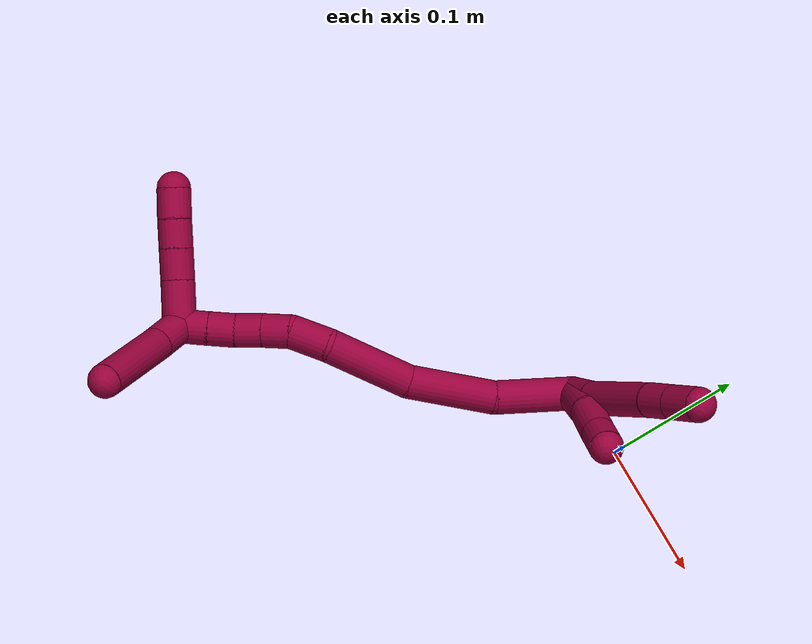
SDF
<sdf version="1.7">
 <world name="default">
  <model name="photoneo_s_sensor">
   <static>1</static>
   <pose>0 0 2 1.57079 1.57079 3.14159</pose>
   <link name="link">
    <inertial><mass>0.1</mass></inertial>
    <sensor name="sensor" type="depth">
     <update_rate>30</update_rate>
     <camera>
      <horizontal_fov>1.22</horizontal_fov>
      <image><width>1920</width><height>1200</height><format>B8G8R8</format></image>
      <clip><near>0.1</near><far>4</far></clip>
      <depth_camera><output>points</output></depth_camera>
     </camera>
     <plugin name="camera_plugin" filename="libgazebo_ros_depth_camera.so">
      <baseline>0.2</baseline>
      <alwaysOn>1</alwaysOn>
      <updateRate>0.0</updateRate>
      <cameraName>camera_ir</cameraName>
      <imageTopicName>/camera/color/image_raw</imageTopicName>
      <cameraInfoTopicName>/camera/color/camera_info</cameraInfoTopicName>
      <depthImageTopicName>/camera/depth/image_raw</depthImageTopicName>
      <depthImageCameraInfoTopicName>/camera/depth/camera_info</depthImageCameraInfoTopicName>
      <pointCloudTopicName>/camera/depth/points</pointCloudTopicName>
      <frameName>fr_optical</frameName>
      <pointCloudCutoff>0.1</pointCloudCutoff>
      <pointCloudCutoffMax>2.0</pointCloudCutoffMax>
      <distortionK1>0</distortionK1>
      <distortionK2>0</distortionK2>
      <distortionK3>0</distortionK3>
      <distortionT1>0</distortionT1>
      <distortionT2>0</distortionT2>
      <CxPrime>0</CxPrime>
      <Cx>0</Cx>
      <Cy>0</Cy>
      <focalLength>0</focalLength>
      <hackBaseline>0</hackBaseline>
     </plugin>
    </sensor>
   </link>
  </model>
  <model name="8">
   <static>0</static>
   <link name="8">
    <collision name="collision-cylinder-e_1_2_8">
     <pose>0.001012 0.010358 0.012488 -0.692467 0.06227 -0.022471</pose>
     <geometry><cylinder><radius>0.0125</radius><length>0.032512</length></cylinder></geometry>
     <surface>
      <friction><ode><mu>1.16</mu><mu2>1.16</mu2><slip1>0</slip1><slip2>0</slip2></ode></friction>
      <contact><ode><kp>1e+06</kp><kd>1</kd><max_vel>0</max_vel><min_depth>0.001</min_depth></ode></contact>
     </surface>
    </collision>
    <visual name="visual-cylinder-e_1_2_8">
     <pose>0.001012 0.010358 0.012488 -0.692467 0.06227 -0.022471</pose>
     <geometry><cylinder><radius>0.0125</radius><length>0.032512</length></cylinder></geometry>
     <material><ambient>0.584314 0 0.227451 1</ambient></material>
    </visual>
    <collision name="collision-cylinder-e_2_8_9">
     <pose>0.006456 0.04578 0.046823 -0.853841 0.132545 -0.060364</pose>
     <geometry><cylinder><radius>0.0125</radius><length>0.067086</length></cylinder></geometry>
     <surface>
      <friction><ode><mu>1.16</mu><mu2>1.16</mu2><slip1>0</slip1><slip2>0</slip2></ode></friction>
      <contact><ode><kp>1e+06</kp><kd>1</kd><max_vel>0</max_vel><min_depth>0.001</min_depth></ode></contact>
     </surface>
    </collision>
    <visual name="visual-cylinder-e_2_8_9">
     <pose>0.006456 0.04578 0.046823 -0.853841 0.132545 -0.060364</pose>
     <geometry><cylinder><radius>0.0125</radius><length>0.067086</length></cylinder></geometry>
     <material><ambient>0.584314 0 0.227451 1</ambient></material>
    </visual>
    <collision name="collision-cylinder-e_3_9_10">
     <pose>0.013472 0.079754 0.076383 -0.857342 0.215801 -0.098928</pose>
     <geometry><cylinder><radius>0.0125</radius><length>0.024128</length></cylinder></geometry>
     <surface>
      <friction><ode><mu>1.16</mu><mu2>1.16</mu2><slip1>0</slip1><slip2>0</slip2></ode></friction>
      <contact><ode><kp>1e+06</kp><kd>1</kd><max_vel>0</max_vel><min_depth>0.001</min_depth></ode></contact>
     </surface>
    </collision>
    <visual name="visual-cylinder-e_3_9_10">
     <pose>0.013472 0.079754 0.076383 -0.857342 0.215801 -0.098928</pose>
     <geometry><cylinder><radius>0.0125</radius><length>0.024128</length></cylinder></geometry>
     <material><ambient>0.584314 0 0.227451 1</ambient></material>
    </visual>
    <collision name="collision-cylinder-e_4_10_6">
     <pose>0.018717 0.098364 0.092544 -0.854201 0.203973 -0.093087</pose>
     <geometry><cylinder><radius>0.0125</radius><length>0.026274</length></cylinder></geometry>
     <surface>
      <friction><ode><mu>1.16</mu><mu2>1.16</mu2><slip1>0</slip1><slip2>0</slip2></ode></friction>
      <contact><ode><kp>1e+06</kp><kd>1</kd><max_vel>0</max_vel><min_depth>0.001</min_depth></ode></contact>
     </surface>
    </collision>
    <visual name="visual-cylinder-e_4_10_6">
     <pose>0.018717 0.098364 0.092544 -0.854201 0.203973 -0.093087</pose>
     <geometry><cylinder><radius>0.0125</radius><length>0.026274</length></cylinder></geometry>
     <material><ambient>0.584314 0 0.227451 1</ambient></material>
    </visual>
    <collision name="collision-cylinder-e_1_2_11">
     <pose>-0.00027 0.008939 0.020791 -0.406072 -0.011941 0.002458</pose>
     <geometry><cylinder><radius>0.0125</radius><length>0.045266</length></cylinder></geometry>
     <surface>
      <friction><ode><mu>1.16</mu><mu2>1.16</mu2><slip1>0</slip1><slip2>0</slip2></ode></friction>
      <contact><ode><kp>1e+06</kp><kd>1</kd><max_vel>0</max_vel><min_depth>0.001</min_depth></ode></contact>
     </surface>
    </collision>
    <visual name="visual-cylinder-e_1_2_11">
     <pose>-0.00027 0.008939 0.020791 -0.406072 -0.011941 0.002458</pose>
     <geometry><cylinder><radius>0.0125</radius><length>0.045266</length></cylinder></geometry>
     <material><ambient>0.584314 0 0.227451 1</ambient></material>
    </visual>
    <collision name="collision-cylinder-e_2_11_12">
     <pose>0.00137 0.022231 0.057162 -0.272419 0.11757 -0.016132</pose>
     <geometry><cylinder><radius>0.0125</radius><length>0.032579</length></cylinder></geometry>
     <surface>
      <friction><ode><mu>1.16</mu><mu2>1.16</mu2><slip1>0</slip1><slip2>0</slip2></ode></friction>
      <contact><ode><kp>1e+06</kp><kd>1</kd><max_vel>0</max_vel><min_depth>0.001</min_depth></ode></contact>
     </surface>
    </collision>
    <visual name="visual-cylinder-e_2_11_12">
     <pose>0.00137 0.022231 0.057162 -0.272419 0.11757 -0.016132</pose>
     <geometry><cylinder><radius>0.0125</radius><length>0.032579</length></cylinder></geometry>
     <material><ambient>0.584314 0 0.227451 1</ambient></material>
    </visual>
    <collision name="collision-cylinder-e_3_12_5">
     <pose>0.004185 0.029919 0.083268 -0.306836 0.081725 -0.012644</pose>
     <geometry><cylinder><radius>0.0125</radius><length>0.022156</length></cylinder></geometry>
     <surface>
      <friction><ode><mu>1.16</mu><mu2>1.16</mu2><slip1>0</slip1><slip2>0</slip2></ode></friction>
      <contact><ode><kp>1e+06</kp><kd>1</kd><max_vel>0</max_vel><min_depth>0.001</min_depth></ode></contact>
     </surface>
    </collision>
    <visual name="visual-cylinder-e_3_12_5">
     <pose>0.004185 0.029919 0.083268 -0.306836 0.081725 -0.012644</pose>
     <geometry><cylinder><radius>0.0125</radius><length>0.022156</length></cylinder></geometry>
     <material><ambient>0.584314 0 0.227451 1</ambient></material>
    </visual>
    <collision name="collision-cylinder-e_1_2_13">
     <pose>-0.022849 -0.017472 0.008177 1.13306 -0.869632 -0.574531</pose>
     <geometry><cylinder><radius>0.0125</radius><length>0.059808</length></cylinder></geometry>
     <surface>
      <friction><ode><mu>1.16</mu><mu2>1.16</mu2><slip1>0</slip1><slip2>0</slip2></ode></friction>
      <contact><ode><kp>1e+06</kp><kd>1</kd><max_vel>0</max_vel><min_depth>0.001</min_depth></ode></contact>
     </surface>
    </collision>
    <visual name="visual-cylinder-e_1_2_13">
     <pose>-0.022849 -0.017472 0.008177 1.13306 -0.869632 -0.574531</pose>
     <geometry><cylinder><radius>0.0125</radius><length>0.059808</length></cylinder></geometry>
     <material><ambient>0.584314 0 0.227451 1</ambient></material>
    </visual>
    <collision name="collision-cylinder-e_2_13_14">
     <pose>-0.073939 -0.050365 0.019178 1.38973 -1.06404 -0.912282</pose>
     <geometry><cylinder><radius>0.0125</radius><length>0.064599</length></cylinder></geometry>
     <surface>
      <friction><ode><mu>1.16</mu><mu2>1.16</mu2><slip1>0</slip1><slip2>0</slip2></ode></friction>
      <contact><ode><kp>1e+06</kp><kd>1</kd><max_vel>0</max_vel><min_depth>0.001</min_depth></ode></contact>
     </surface>
    </collision>
    <visual name="visual-cylinder-e_2_13_14">
     <pose>-0.073939 -0.050365 0.019178 1.38973 -1.06404 -0.912282</pose>
     <geometry><cylinder><radius>0.0125</radius><length>0.064599</length></cylinder></geometry>
     <material><ambient>0.584314 0 0.227451 1</ambient></material>
    </visual>
    <collision name="collision-cylinder-e_3_14_15">
     <pose>-0.133426 -0.073727 0.022943 1.45275 -1.32023 -1.20751</pose>
     <geometry><cylinder><radius>0.0125</radius><length>0.064508</length></cylinder></geometry>
     <surface>
      <friction><ode><mu>1.16</mu><mu2>1.16</mu2><slip1>0</slip1><slip2>0</slip2></ode></friction>
      <contact><ode><kp>1e+06</kp><kd>1</kd><max_vel>0</max_vel><min_depth>0.001</min_depth></ode></contact>
     </surface>
    </collision>
    <visual name="visual-cylinder-e_3_14_15">
     <pose>-0.133426 -0.073727 0.022943 1.45275 -1.32023 -1.20751</pose>
     <geometry><cylinder><radius>0.0125</radius><length>0.064508</length></cylinder></geometry>
     <material><ambient>0.584314 0 0.227451 1</ambient></material>
    </visual>
    <collision name="collision-cylinder-e_4_15_16">
     <pose>-0.177284 -0.088322 0.021177 1.95727 -1.05306 -1.42524</pose>
     <geometry><cylinder><radius>0.0125</radius><length>0.029026</length></cylinder></geometry>
     <surface>
      <friction><ode><mu>1.16</mu><mu2>1.16</mu2><slip1>0</slip1><slip2>0</slip2></ode></friction>
      <contact><ode><kp>1e+06</kp><kd>1</kd><max_vel>0</max_vel><min_depth>0.001</min_depth></ode></contact>
     </surface>
    </collision>
    <visual name="visual-cylinder-e_4_15_16">
     <pose>-0.177284 -0.088322 0.021177 1.95727 -1.05306 -1.42524</pose>
     <geometry><cylinder><radius>0.0125</radius><length>0.029026</length></cylinder></geometry>
     <material><ambient>0.584314 0 0.227451 1</ambient></material>
    </visual>
    <collision name="collision-cylinder-e_5_16_17">
     <pose>-0.197436 -0.102355 0.017761 1.66654 -0.793861 -0.864529</pose>
     <geometry><cylinder><radius>0.0125</radius><length>0.02115</length></cylinder></geometry>
     <surface>
      <friction><ode><mu>1.16</mu><mu2>1.16</mu2><slip1>0</slip1><slip2>0</slip2></ode></friction>
      <contact><ode><kp>1e+06</kp><kd>1</kd><max_vel>0</max_vel><min_depth>0.001</min_depth></ode></contact>
     </surface>
    </collision>
    <visual name="visual-cylinder-e_5_16_17">
     <pose>-0.197436 -0.102355 0.017761 1.66654 -0.793861 -0.864529</pose>
     <geometry><cylinder><radius>0.0125</radius><length>0.02115</length></cylinder></geometry>
     <material><ambient>0.584314 0 0.227451 1</ambient></material>
    </visual>
    <collision name="collision-cylinder-e_6_17_18">
     <pose>-0.212166 -0.116766 0.017228 1.54583 -0.796375 -0.778685</pose>
     <geometry><cylinder><radius>0.0125</radius><length>0.020116</length></cylinder></geometry>
     <surface>
      <friction><ode><mu>1.16</mu><mu2>1.16</mu2><slip1>0</slip1><slip2>0</slip2></ode></friction>
      <contact><ode><kp>1e+06</kp><kd>1</kd><max_vel>0</max_vel><min_depth>0.001</min_depth></ode></contact>
     </surface>
    </collision>
    <visual name="visual-cylinder-e_6_17_18">
     <pose>-0.212166 -0.116766 0.017228 1.54583 -0.796375 -0.778685</pose>
     <geometry><cylinder><radius>0.0125</radius><length>0.020116</length></cylinder></geometry>
     <material><ambient>0.584314 0 0.227451 1</ambient></material>
    </visual>
    <collision name="collision-cylinder-e_7_18_19">
     <pose>-0.227355 -0.129961 0.01798 1.47762 -0.912165 -0.840499</pose>
     <geometry><cylinder><radius>0.0125</radius><length>0.020228</length></cylinder></geometry>
     <surface>
      <friction><ode><mu>1.16</mu><mu2>1.16</mu2><slip1>0</slip1><slip2>0</slip2></ode></friction>
      <contact><ode><kp>1e+06</kp><kd>1</kd><max_vel>0</max_vel><min_depth>0.001</min_depth></ode></contact>
     </surface>
    </collision>
    <visual name="visual-cylinder-e_7_18_19">
     <pose>-0.227355 -0.129961 0.01798 1.47762 -0.912165 -0.840499</pose>
     <geometry><cylinder><radius>0.0125</radius><length>0.020228</length></cylinder></geometry>
     <material><ambient>0.584314 0 0.227451 1</ambient></material>
    </visual>
    <collision name="collision-cylinder-e_8_19_1">
     <pose>-0.243509 -0.142372 0.01897 1.50456 -0.916066 -0.86456</pose>
     <geometry><cylinder><radius>0.0125</radius><length>0.020564</length></cylinder></geometry>
     <surface>
      <friction><ode><mu>1.16</mu><mu2>1.16</mu2><slip1>0</slip1><slip2>0</slip2></ode></friction>
      <contact><ode><kp>1e+06</kp><kd>1</kd><max_vel>0</max_vel><min_depth>0.001</min_depth></ode></contact>
     </surface>
    </collision>
    <visual name="visual-cylinder-e_8_19_1">
     <pose>-0.243509 -0.142372 0.01897 1.50456 -0.916066 -0.86456</pose>
     <geometry><cylinder><radius>0.0125</radius><length>0.020564</length></cylinder></geometry>
     <material><ambient>0.584314 0 0.227451 1</ambient></material>
    </visual>
    <collision name="collision-cylinder-e_1_1_20">
     <pose>-0.261663 -0.139718 0.009585 -2.40419 -0.64682 1.42914</pose>
     <geometry><cylinder><radius>0.0125</radius><length>0.03318</length></cylinder></geometry>
     <surface>
      <friction><ode><mu>1.16</mu><mu2>1.16</mu2><slip1>0</slip1><slip2>0</slip2></ode></friction>
      <contact><ode><kp>1e+06</kp><kd>1</kd><max_vel>0</max_vel><min_depth>0.001</min_depth></ode></contact>
     </surface>
    </collision>
    <visual name="visual-cylinder-e_1_1_20">
     <pose>-0.261663 -0.139718 0.009585 -2.40419 -0.64682 1.42914</pose>
     <geometry><cylinder><radius>0.0125</radius><length>0.03318</length></cylinder></geometry>
     <material><ambient>0.584314 0 0.227451 1</ambient></material>
    </visual>
    <collision name="collision-cylinder-e_2_20_21">
     <pose>-0.279018 -0.124184 -0.006327 -2.31542 -0.684259 1.36467</pose>
     <geometry><cylinder><radius>0.0125</radius><length>0.023278</length></cylinder></geometry>
     <surface>
      <friction><ode><mu>1.16</mu><mu2>1.16</mu2><slip1>0</slip1><slip2>0</slip2></ode></friction>
      <contact><ode><kp>1e+06</kp><kd>1</kd><max_vel>0</max_vel><min_depth>0.001</min_depth></ode></contact>
     </surface>
    </collision>
    <visual name="visual-cylinder-e_2_20_21">
     <pose>-0.279018 -0.124184 -0.006327 -2.31542 -0.684259 1.36467</pose>
     <geometry><cylinder><radius>0.0125</radius><length>0.023278</length></cylinder></geometry>
     <material><ambient>0.584314 0 0.227451 1</ambient></material>
    </visual>
    <collision name="collision-cylinder-e_3_21_22">
     <pose>-0.293098 -0.111491 -0.018024 -2.31528 -0.684262 1.36448</pose>
     <geometry><cylinder><radius>0.0125</radius><length>0.021271</length></cylinder></geometry>
     <surface>
      <friction><ode><mu>1.16</mu><mu2>1.16</mu2><slip1>0</slip1><slip2>0</slip2></ode></friction>
      <contact><ode><kp>1e+06</kp><kd>1</kd><max_vel>0</max_vel><min_depth>0.001</min_depth></ode></contact>
     </surface>
    </collision>
    <visual name="visual-cylinder-e_3_21_22">
     <pose>-0.293098 -0.111491 -0.018024 -2.31528 -0.684262 1.36448</pose>
     <geometry><cylinder><radius>0.0125</radius><length>0.021271</length></cylinder></geometry>
     <material><ambient>0.584314 0 0.227451 1</ambient></material>
    </visual>
    <collision name="collision-cylinder-e_4_22_4">
     <pose>-0.306462 -0.099255 -0.03007 -2.37888 -0.639025 1.37971</pose>
     <geometry><cylinder><radius>0.0125</radius><length>0.022271</length></cylinder></geometry>
     <surface>
      <friction><ode><mu>1.16</mu><mu2>1.16</mu2><slip1>0</slip1><slip2>0</slip2></ode></friction>
      <contact><ode><kp>1e+06</kp><kd>1</kd><max_vel>0</max_vel><min_depth>0.001</min_depth></ode></contact>
     </surface>
    </collision>
    <visual name="visual-cylinder-e_4_22_4">
     <pose>-0.306462 -0.099255 -0.03007 -2.37888 -0.639025 1.37971</pose>
     <geometry><cylinder><radius>0.0125</radius><length>0.022271</length></cylinder></geometry>
     <material><ambient>0.584314 0 0.227451 1</ambient></material>
    </visual>
    <collision name="collision-cylinder-e_1_1_23">
     <pose>-0.256686 -0.152051 0.032767 0.251021 -0.348583 -0.044426</pose>
     <geometry><cylinder><radius>0.0125</radius><length>0.0294</length></cylinder></geometry>
     <surface>
      <friction><ode><mu>1.16</mu><mu2>1.16</mu2><slip1>0</slip1><slip2>0</slip2></ode></friction>
      <contact><ode><kp>1e+06</kp><kd>1</kd><max_vel>0</max_vel><min_depth>0.001</min_depth></ode></contact>
     </surface>
    </collision>
    <visual name="visual-cylinder-e_1_1_23">
     <pose>-0.256686 -0.152051 0.032767 0.251021 -0.348583 -0.044426</pose>
     <geometry><cylinder><radius>0.0125</radius><length>0.0294</length></cylinder></geometry>
     <material><ambient>0.584314 0 0.227451 1</ambient></material>
    </visual>
    <collision name="collision-cylinder-e_2_23_3">
     <pose>-0.274712 -0.159209 0.078755 0.113797 -0.377296 -0.021749</pose>
     <geometry><cylinder><radius>0.0125</radius><length>0.0706</length></cylinder></geometry>
     <surface>
      <friction><ode><mu>1.16</mu><mu2>1.16</mu2><slip1>0</slip1><slip2>0</slip2></ode></friction>
      <contact><ode><kp>1e+06</kp><kd>1</kd><max_vel>0</max_vel><min_depth>0.001</min_depth></ode></contact>
     </surface>
    </collision>
    <visual name="visual-cylinder-e_2_23_3">
     <pose>-0.274712 -0.159209 0.078755 0.113797 -0.377296 -0.021749</pose>
     <geometry><cylinder><radius>0.0125</radius><length>0.0706</length></cylinder></geometry>
     <material><ambient>0.584314 0 0.227451 1</ambient></material>
    </visual>
    <collision name="collision-sphere-3">
     <pose>-0.287716 -0.162936 0.11136 0 -0 0</pose>
     <geometry><sphere><radius>0.0125</radius></sphere></geometry>
     <surface>
      <friction><ode><mu>1.16</mu><mu2>1.16</mu2><slip1>0</slip1><slip2>0</slip2></ode></friction>
      <contact><ode><kp>1e+06</kp><kd>1</kd><max_vel>0</max_vel><min_depth>0.001</min_depth></ode></contact>
     </surface>
    </collision>
    <visual name="visual-sphere-3">
     <pose>-0.287716 -0.162936 0.11136 0 -0 0</pose>
     <geometry><sphere><radius>0.0125</radius></sphere></geometry>
     <material><ambient>0.584314 0 0.227451 1</ambient></material>
    </visual>
    <collision name="collision-sphere-23">
     <pose>-0.261707 -0.155483 0.046151 0 -0 0</pose>
     <geometry><sphere><radius>0.0125</radius></sphere></geometry>
     <surface>
      <friction><ode><mu>1.16</mu><mu2>1.16</mu2><slip1>0</slip1><slip2>0</slip2></ode></friction>
      <contact><ode><kp>1e+06</kp><kd>1</kd><max_vel>0</max_vel><min_depth>0.001</min_depth></ode></contact>
     </surface>
    </collision>
    <visual name="visual-sphere-23">
     <pose>-0.261707 -0.155483 0.046151 0 -0 0</pose>
     <geometry><sphere><radius>0.0125</radius></sphere></geometry>
     <material><ambient>0.584314 0 0.227451 1</ambient></material>
    </visual>
    <collision name="collision-sphere-4">
     <pose>-0.313103 -0.09308 -0.036532 0 -0 0</pose>
     <geometry><sphere><radius>0.0125</radius></sphere></geometry>
     <surface>
      <friction><ode><mu>1.16</mu><mu2>1.16</mu2><slip1>0</slip1><slip2>0</slip2></ode></friction>
      <contact><ode><kp>1e+06</kp><kd>1</kd><max_vel>0</max_vel><min_depth>0.001</min_depth></ode></contact>
     </surface>
    </collision>
    <visual name="visual-sphere-4">
     <pose>-0.313103 -0.09308 -0.036532 0 -0 0</pose>
     <geometry><sphere><radius>0.0125</radius></sphere></geometry>
     <material><ambient>0.584314 0 0.227451 1</ambient></material>
    </visual>
    <collision name="collision-sphere-22">
     <pose>-0.29982 -0.105431 -0.023608 0 -0 0</pose>
     <geometry><sphere><radius>0.0125</radius></sphere></geometry>
     <surface>
      <friction><ode><mu>1.16</mu><mu2>1.16</mu2><slip1>0</slip1><slip2>0</slip2></ode></friction>
      <contact><ode><kp>1e+06</kp><kd>1</kd><max_vel>0</max_vel><min_depth>0.001</min_depth></ode></contact>
     </surface>
    </collision>
    <visual name="visual-sphere-22">
     <pose>-0.29982 -0.105431 -0.023608 0 -0 0</pose>
     <geometry><sphere><radius>0.0125</radius></sphere></geometry>
     <material><ambient>0.584314 0 0.227451 1</ambient></material>
    </visual>
    <collision name="collision-sphere-21">
     <pose>-0.286375 -0.117552 -0.012439 0 -0 0</pose>
     <geometry><sphere><radius>0.0125</radius></sphere></geometry>
     <surface>
      <friction><ode><mu>1.16</mu><mu2>1.16</mu2><slip1>0</slip1><slip2>0</slip2></ode></friction>
      <contact><ode><kp>1e+06</kp><kd>1</kd><max_vel>0</max_vel><min_depth>0.001</min_depth></ode></contact>
     </surface>
    </collision>
    <visual name="visual-sphere-21">
     <pose>-0.286375 -0.117552 -0.012439 0 -0 0</pose>
     <geometry><sphere><radius>0.0125</radius></sphere></geometry>
     <material><ambient>0.584314 0 0.227451 1</ambient></material>
    </visual>
    <collision name="collision-sphere-20">
     <pose>-0.271661 -0.130816 -0.000215 0 -0 0</pose>
     <geometry><sphere><radius>0.0125</radius></sphere></geometry>
     <surface>
      <friction><ode><mu>1.16</mu><mu2>1.16</mu2><slip1>0</slip1><slip2>0</slip2></ode></friction>
      <contact><ode><kp>1e+06</kp><kd>1</kd><max_vel>0</max_vel><min_depth>0.001</min_depth></ode></contact>
     </surface>
    </collision>
    <visual name="visual-sphere-20">
     <pose>-0.271661 -0.130816 -0.000215 0 -0 0</pose>
     <geometry><sphere><radius>0.0125</radius></sphere></geometry>
     <material><ambient>0.584314 0 0.227451 1</ambient></material>
    </visual>
    <collision name="collision-sphere-11">
     <pose>-0.00054 0.017879 0.041582 0 -0 0</pose>
     <geometry><sphere><radius>0.0125</radius></sphere></geometry>
     <surface>
      <friction><ode><mu>1.16</mu><mu2>1.16</mu2><slip1>0</slip1><slip2>0</slip2></ode></friction>
      <contact><ode><kp>1e+06</kp><kd>1</kd><max_vel>0</max_vel><min_depth>0.001</min_depth></ode></contact>
     </surface>
    </collision>
    <visual name="visual-sphere-11">
     <pose>-0.00054 0.017879 0.041582 0 -0 0</pose>
     <geometry><sphere><radius>0.0125</radius></sphere></geometry>
     <material><ambient>0.584314 0 0.227451 1</ambient></material>
    </visual>
    <collision name="collision-sphere-6">
     <pose>0.021378 0.108064 0.100994 0 -0 0</pose>
     <geometry><sphere><radius>0.0125</radius></sphere></geometry>
     <surface>
      <friction><ode><mu>1.16</mu><mu2>1.16</mu2><slip1>0</slip1><slip2>0</slip2></ode></friction>
      <contact><ode><kp>1e+06</kp><kd>1</kd><max_vel>0</max_vel><min_depth>0.001</min_depth></ode></contact>
     </surface>
    </collision>
    <visual name="visual-sphere-6">
     <pose>0.021378 0.108064 0.100994 0 -0 0</pose>
     <geometry><sphere><radius>0.0125</radius></sphere></geometry>
     <material><ambient>0.584314 0 0.227451 1</ambient></material>
    </visual>
    <collision name="collision-sphere-10">
     <pose>0.016056 0.088664 0.084095 0 -0 0</pose>
     <geometry><sphere><radius>0.0125</radius></sphere></geometry>
     <surface>
      <friction><ode><mu>1.16</mu><mu2>1.16</mu2><slip1>0</slip1><slip2>0</slip2></ode></friction>
      <contact><ode><kp>1e+06</kp><kd>1</kd><max_vel>0</max_vel><min_depth>0.001</min_depth></ode></contact>
     </surface>
    </collision>
    <visual name="visual-sphere-10">
     <pose>0.016056 0.088664 0.084095 0 -0 0</pose>
     <geometry><sphere><radius>0.0125</radius></sphere></geometry>
     <material><ambient>0.584314 0 0.227451 1</ambient></material>
    </visual>
    <collision name="collision-sphere-9">
     <pose>0.010889 0.070843 0.06867 0 -0 0</pose>
     <geometry><sphere><radius>0.0125</radius></sphere></geometry>
     <surface>
      <friction><ode><mu>1.16</mu><mu2>1.16</mu2><slip1>0</slip1><slip2>0</slip2></ode></friction>
      <contact><ode><kp>1e+06</kp><kd>1</kd><max_vel>0</max_vel><min_depth>0.001</min_depth></ode></contact>
     </surface>
    </collision>
    <visual name="visual-sphere-9">
     <pose>0.010889 0.070843 0.06867 0 -0 0</pose>
     <geometry><sphere><radius>0.0125</radius></sphere></geometry>
     <material><ambient>0.584314 0 0.227451 1</ambient></material>
    </visual>
    <collision name="collision-sphere-2">
     <geometry><sphere><radius>0.0125</radius></sphere></geometry>
     <surface>
      <friction><ode><mu>1.16</mu><mu2>1.16</mu2><slip1>0</slip1><slip2>0</slip2></ode></friction>
      <contact><ode><kp>1e+06</kp><kd>1</kd><max_vel>0</max_vel><min_depth>0.001</min_depth></ode></contact>
     </surface>
    </collision>
    <visual name="visual-sphere-2">
     <geometry><sphere><radius>0.0125</radius></sphere></geometry>
     <material><ambient>0.584314 0 0.227451 1</ambient></material>
    </visual>
    <collision name="collision-sphere-19">
     <pose>-0.235353 -0.136124 0.018556 0 -0 0</pose>
     <geometry><sphere><radius>0.0125</radius></sphere></geometry>
     <surface>
      <friction><ode><mu>1.16</mu><mu2>1.16</mu2><slip1>0</slip1><slip2>0</slip2></ode></friction>
      <contact><ode><kp>1e+06</kp><kd>1</kd><max_vel>0</max_vel><min_depth>0.001</min_depth></ode></contact>
     </surface>
    </collision>
    <visual name="visual-sphere-19">
     <pose>-0.235353 -0.136124 0.018556 0 -0 0</pose>
     <geometry><sphere><radius>0.0125</radius></sphere></geometry>
     <material><ambient>0.584314 0 0.227451 1</ambient></material>
    </visual>
    <collision name="collision-sphere-8">
     <pose>0.002023 0.020717 0.024975 0 -0 0</pose>
     <geometry><sphere><radius>0.0125</radius></sphere></geometry>
     <surface>
      <friction><ode><mu>1.16</mu><mu2>1.16</mu2><slip1>0</slip1><slip2>0</slip2></ode></friction>
      <contact><ode><kp>1e+06</kp><kd>1</kd><max_vel>0</max_vel><min_depth>0.001</min_depth></ode></contact>
     </surface>
    </collision>
    <visual name="visual-sphere-8">
     <pose>0.002023 0.020717 0.024975 0 -0 0</pose>
     <geometry><sphere><radius>0.0125</radius></sphere></geometry>
     <material><ambient>0.584314 0 0.227451 1</ambient></material>
    </visual>
    <collision name="collision-sphere-12">
     <pose>0.003281 0.026584 0.072742 0 -0 0</pose>
     <geometry><sphere><radius>0.0125</radius></sphere></geometry>
     <surface>
      <friction><ode><mu>1.16</mu><mu2>1.16</mu2><slip1>0</slip1><slip2>0</slip2></ode></friction>
      <contact><ode><kp>1e+06</kp><kd>1</kd><max_vel>0</max_vel><min_depth>0.001</min_depth></ode></contact>
     </surface>
    </collision>
    <visual name="visual-sphere-12">
     <pose>0.003281 0.026584 0.072742 0 -0 0</pose>
     <geometry><sphere><radius>0.0125</radius></sphere></geometry>
     <material><ambient>0.584314 0 0.227451 1</ambient></material>
    </visual>
    <collision name="collision-sphere-5">
     <pose>0.00509 0.033254 0.093793 0 -0 0</pose>
     <geometry><sphere><radius>0.0125</radius></sphere></geometry>
     <surface>
      <friction><ode><mu>1.16</mu><mu2>1.16</mu2><slip1>0</slip1><slip2>0</slip2></ode></friction>
      <contact><ode><kp>1e+06</kp><kd>1</kd><max_vel>0</max_vel><min_depth>0.001</min_depth></ode></contact>
     </surface>
    </collision>
    <visual name="visual-sphere-5">
     <pose>0.00509 0.033254 0.093793 0 -0 0</pose>
     <geometry><sphere><radius>0.0125</radius></sphere></geometry>
     <material><ambient>0.584314 0 0.227451 1</ambient></material>
    </visual>
    <collision name="collision-sphere-13">
     <pose>-0.045699 -0.034945 0.016355 0 -0 0</pose>
     <geometry><sphere><radius>0.0125</radius></sphere></geometry>
     <surface>
      <friction><ode><mu>1.16</mu><mu2>1.16</mu2><slip1>0</slip1><slip2>0</slip2></ode></friction>
      <contact><ode><kp>1e+06</kp><kd>1</kd><max_vel>0</max_vel><min_depth>0.001</min_depth></ode></contact>
     </surface>
    </collision>
    <visual name="visual-sphere-13">
     <pose>-0.045699 -0.034945 0.016355 0 -0 0</pose>
     <geometry><sphere><radius>0.0125</radius></sphere></geometry>
     <material><ambient>0.584314 0 0.227451 1</ambient></material>
    </visual>
    <collision name="collision-sphere-14">
     <pose>-0.102179 -0.065785 0.022001 0 -0 0</pose>
     <geometry><sphere><radius>0.0125</radius></sphere></geometry>
     <surface>
      <friction><ode><mu>1.16</mu><mu2>1.16</mu2><slip1>0</slip1><slip2>0</slip2></ode></friction>
      <contact><ode><kp>1e+06</kp><kd>1</kd><max_vel>0</max_vel><min_depth>0.001</min_depth></ode></contact>
     </surface>
    </collision>
    <visual name="visual-sphere-14">
     <pose>-0.102179 -0.065785 0.022001 0 -0 0</pose>
     <geometry><sphere><radius>0.0125</radius></sphere></geometry>
     <material><ambient>0.584314 0 0.227451 1</ambient></material>
    </visual>
    <collision name="collision-sphere-15">
     <pose>-0.164673 -0.081669 0.023885 0 -0 0</pose>
     <geometry><sphere><radius>0.0125</radius></sphere></geometry>
     <surface>
      <friction><ode><mu>1.16</mu><mu2>1.16</mu2><slip1>0</slip1><slip2>0</slip2></ode></friction>
      <contact><ode><kp>1e+06</kp><kd>1</kd><max_vel>0</max_vel><min_depth>0.001</min_depth></ode></contact>
     </surface>
    </collision>
    <visual name="visual-sphere-15">
     <pose>-0.164673 -0.081669 0.023885 0 -0 0</pose>
     <geometry><sphere><radius>0.0125</radius></sphere></geometry>
     <material><ambient>0.584314 0 0.227451 1</ambient></material>
    </visual>
    <collision name="collision-sphere-16">
     <pose>-0.189895 -0.094975 0.01847 0 -0 0</pose>
     <geometry><sphere><radius>0.0125</radius></sphere></geometry>
     <surface>
      <friction><ode><mu>1.16</mu><mu2>1.16</mu2><slip1>0</slip1><slip2>0</slip2></ode></friction>
      <contact><ode><kp>1e+06</kp><kd>1</kd><max_vel>0</max_vel><min_depth>0.001</min_depth></ode></contact>
     </surface>
    </collision>
    <visual name="visual-sphere-16">
     <pose>-0.189895 -0.094975 0.01847 0 -0 0</pose>
     <geometry><sphere><radius>0.0125</radius></sphere></geometry>
     <material><ambient>0.584314 0 0.227451 1</ambient></material>
    </visual>
    <collision name="collision-sphere-17">
     <pose>-0.204976 -0.109735 0.017053 0 -0 0</pose>
     <geometry><sphere><radius>0.0125</radius></sphere></geometry>
     <surface>
      <friction><ode><mu>1.16</mu><mu2>1.16</mu2><slip1>0</slip1><slip2>0</slip2></ode></friction>
      <contact><ode><kp>1e+06</kp><kd>1</kd><max_vel>0</max_vel><min_depth>0.001</min_depth></ode></contact>
     </surface>
    </collision>
    <visual name="visual-sphere-17">
     <pose>-0.204976 -0.109735 0.017053 0 -0 0</pose>
     <geometry><sphere><radius>0.0125</radius></sphere></geometry>
     <material><ambient>0.584314 0 0.227451 1</ambient></material>
    </visual>
    <collision name="collision-sphere-18">
     <pose>-0.219356 -0.123798 0.017404 0 -0 0</pose>
     <geometry><sphere><radius>0.0125</radius></sphere></geometry>
     <surface>
      <friction><ode><mu>1.16</mu><mu2>1.16</mu2><slip1>0</slip1><slip2>0</slip2></ode></friction>
      <contact><ode><kp>1e+06</kp><kd>1</kd><max_vel>0</max_vel><min_depth>0.001</min_depth></ode></contact>
     </surface>
    </collision>
    <visual name="visual-sphere-18">
     <pose>-0.219356 -0.123798 0.017404 0 -0 0</pose>
     <geometry><sphere><radius>0.0125</radius></sphere></geometry>
     <material><ambient>0.584314 0 0.227451 1</ambient></material>
    </visual>
    <collision name="collision-sphere-1">
     <pose>-0.251665 -0.148619 0.019384 0 -0 0</pose>
     <geometry><sphere><radius>0.0125</radius></sphere></geometry>
     <surface>
      <friction><ode><mu>1.16</mu><mu2>1.16</mu2><slip1>0</slip1><slip2>0</slip2></ode></friction>
      <contact><ode><kp>1e+06</kp><kd>1</kd><max_vel>0</max_vel><min_depth>0.001</min_depth></ode></contact>
     </surface>
    </collision>
    <visual name="visual-sphere-1">
     <pose>-0.251665 -0.148619 0.019384 0 -0 0</pose>
     <geometry><sphere><radius>0.0125</radius></sphere></geometry>
     <material><ambient>0.584314 0 0.227451 1</ambient></material>
    </visual>
    <inertial>
     <pose>-0.122288 -0.053066 0.031213 0 -0 0</pose>
     <mass>0.75</mass>
     <inertia>
      <ixx>6.2e-05</ixx>
      <ixy>0</ixy>
      <ixz>0</ixz>
      <iyy>0.000121</iyy>
      <iyz>0</iyz>
      <izz>0.000104</izz>
     </inertia>
    </inertial>
   </link>
   <pose>-0.053179 -0.004598 0.011498 0.58721 0.38299 0.391631</pose>
  </model>
 </world>
</sdf>
